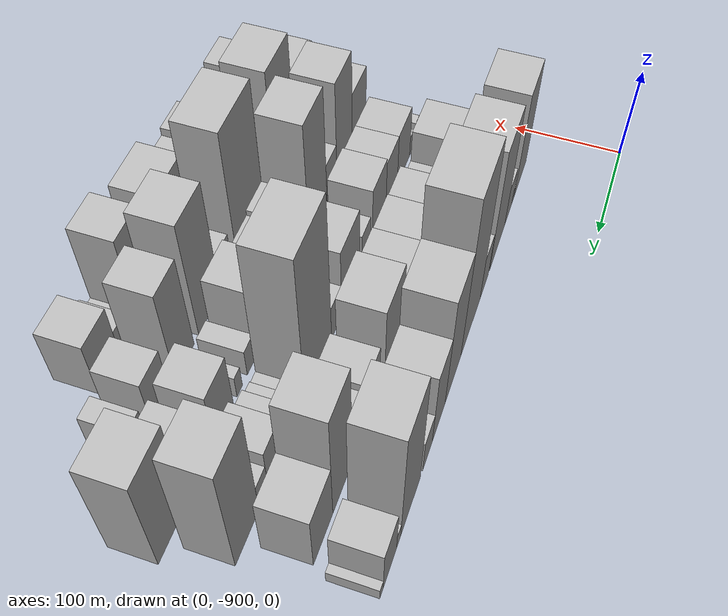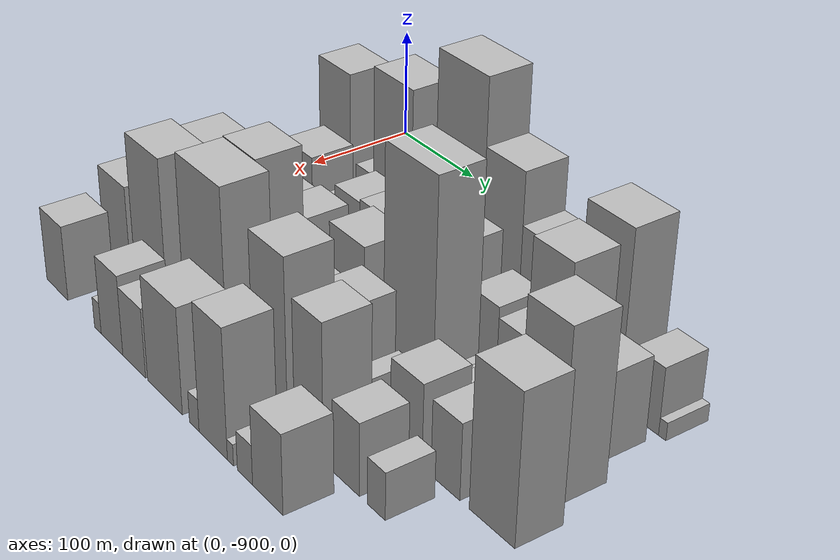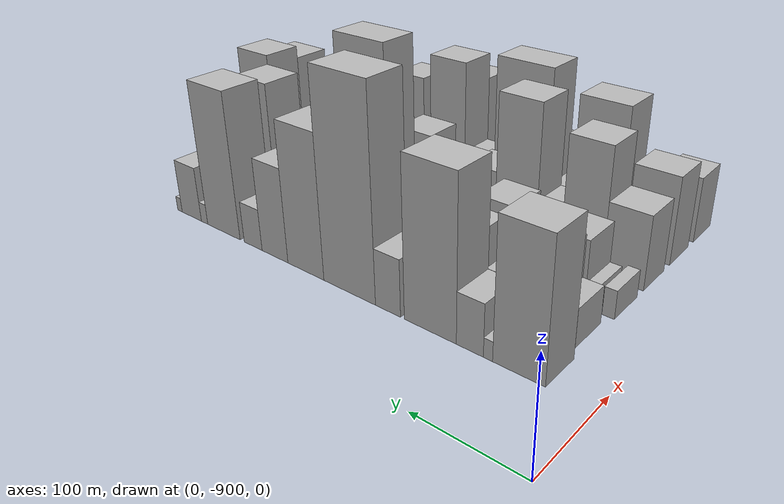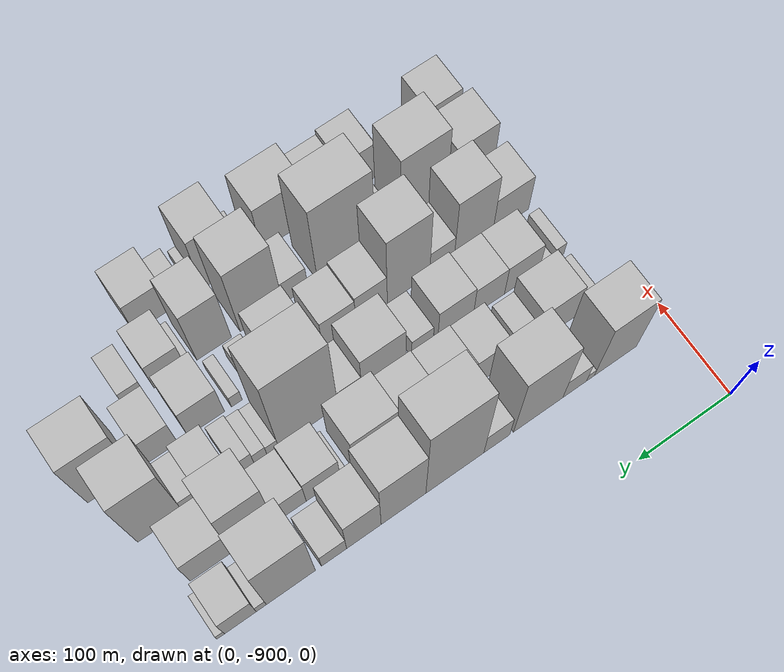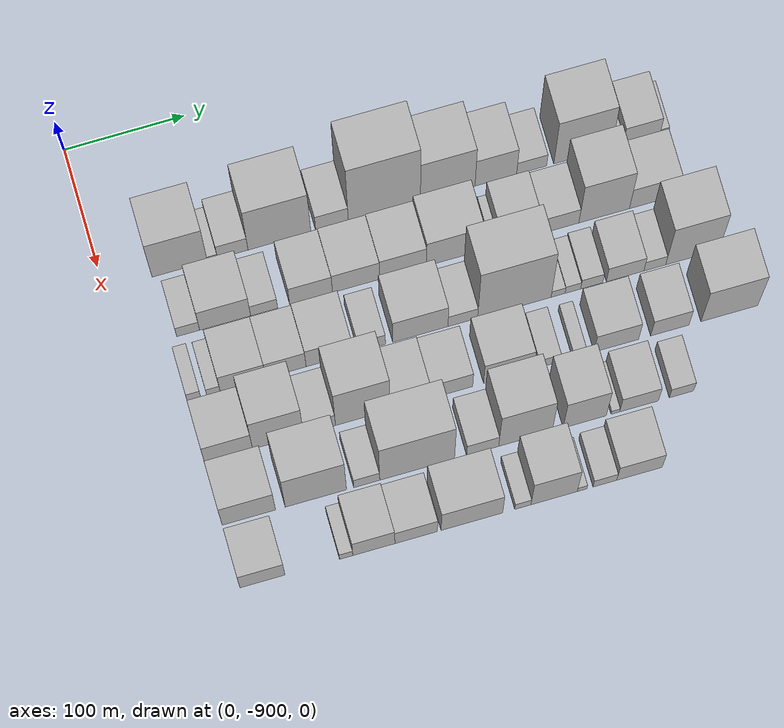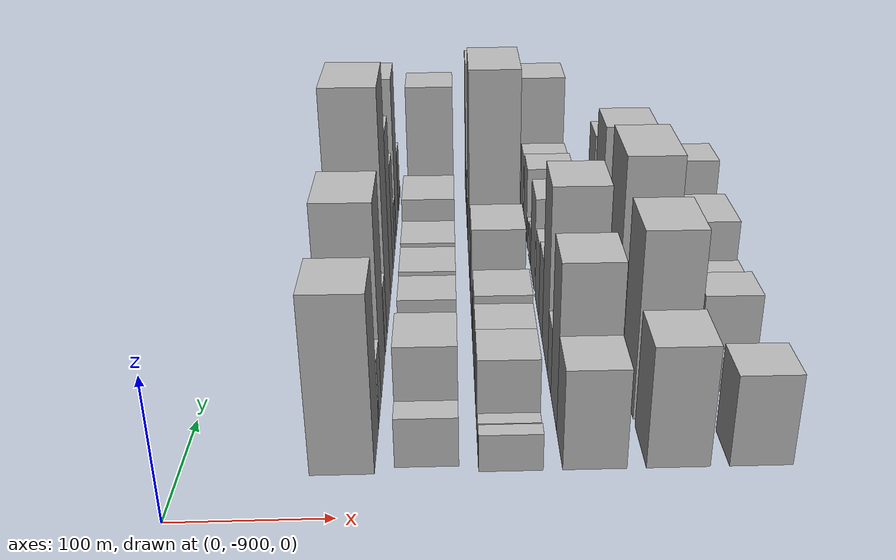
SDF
<sdf version="1.6">
 <world name="default">
  <model name="building_1">
   <static>1</static>
   <pose>100.0000 -837.0420 0 0.000000 0.000000 0.000000</pose>
   <link name="link">
    <pose>0 0 63.00 0 0 0</pose>
    <collision name="collision"><geometry><box><size>40.0000 45.9160 126.0000</size></box></geometry></collision>
    <visual name="visual">
     <cast_shadows>0</cast_shadows>
     <geometry><box><size>40.0000 45.9160 126.0000</size></box></geometry>
     <material>
      <script>
       <uri>model://HANNAS_wall/materials/scripts</uri>
       <uri>model://HANNAS_wall/materials/textures</uri>
       <name>vrc/HANNAS_wall</name>
      </script>
     </material>
    </visual>
   </link>
  </model>
  <model name="building_2">
   <static>1</static>
   <pose>100.0000 -809.8941 0 0.000000 0.000000 0.000000</pose>
   <link name="link">
    <pose>0 0 9.00 0 0 0</pose>
    <collision name="collision"><geometry><box><size>40.0000 8.3797 18.0000</size></box></geometry></collision>
    <visual name="visual">
     <cast_shadows>0</cast_shadows>
     <geometry><box><size>40.0000 8.3797 18.0000</size></box></geometry>
     <material>
      <script>
       <uri>model://HANNAS_wall/materials/scripts</uri>
       <uri>model://HANNAS_wall/materials/textures</uri>
       <name>vrc/HANNAS_wall</name>
      </script>
     </material>
    </visual>
   </link>
  </model>
  <model name="building_3">
   <static>1</static>
   <pose>100.0000 -792.9933 0 0.000000 0.000000 0.000000</pose>
   <link name="link">
    <pose>0 0 24.00 0 0 0</pose>
    <collision name="collision"><geometry><box><size>40.0000 25.4219 48.0000</size></box></geometry></collision>
    <visual name="visual">
     <cast_shadows>0</cast_shadows>
     <geometry><box><size>40.0000 25.4219 48.0000</size></box></geometry>
     <material>
      <script>
       <uri>model://HANNAS_wall/materials/scripts</uri>
       <uri>model://HANNAS_wall/materials/textures</uri>
       <name>vrc/HANNAS_wall</name>
      </script>
     </material>
    </visual>
   </link>
  </model>
  <model name="building_4">
   <static>1</static>
   <pose>100.0000 -754.1170 0 0.000000 0.000000 0.000000</pose>
   <link name="link">
    <pose>0 0 73.50 0 0 0</pose>
    <collision name="collision"><geometry><box><size>40.0000 52.3308 147.0000</size></box></geometry></collision>
    <visual name="visual">
     <cast_shadows>0</cast_shadows>
     <geometry><box><size>40.0000 52.3308 147.0000</size></box></geometry>
     <material>
      <script>
       <uri>model://HANNAS_wall/materials/scripts</uri>
       <uri>model://HANNAS_wall/materials/textures</uri>
       <name>vrc/HANNAS_wall</name>
      </script>
     </material>
    </visual>
   </link>
  </model>
  <model name="building_5">
   <static>1</static>
   <pose>100.0000 -710.3732 0 0.000000 0.000000 0.000000</pose>
   <link name="link">
    <pose>0 0 27.00 0 0 0</pose>
    <collision name="collision"><geometry><box><size>40.0000 27.1567 54.0000</size></box></geometry></collision>
    <visual name="visual">
     <cast_shadows>0</cast_shadows>
     <geometry><box><size>40.0000 27.1567 54.0000</size></box></geometry>
     <material>
      <script>
       <uri>model://HANNAS_wall/materials/scripts</uri>
       <uri>model://HANNAS_wall/materials/textures</uri>
       <name>vrc/HANNAS_wall</name>
      </script>
     </material>
    </visual>
   </link>
  </model>
  <model name="building_6">
   <static>1</static>
   <pose>100.0000 -666.7493 0 0.000000 0.000000 0.000000</pose>
   <link name="link">
    <pose>0 0 97.50 0 0 0</pose>
    <collision name="collision"><geometry><box><size>40.0000 60.0911 195.0000</size></box></geometry></collision>
    <visual name="visual">
     <cast_shadows>0</cast_shadows>
     <geometry><box><size>40.0000 60.0911 195.0000</size></box></geometry>
     <material>
      <script>
       <uri>model://HANNAS_wall/materials/scripts</uri>
       <uri>model://HANNAS_wall/materials/textures</uri>
       <name>vrc/HANNAS_wall</name>
      </script>
     </material>
    </visual>
   </link>
  </model>
  <model name="building_7">
   <static>1</static>
   <pose>100.0000 -613.9313 0 0.000000 0.000000 0.000000</pose>
   <link name="link">
    <pose>0 0 69.00 0 0 0</pose>
    <collision name="collision"><geometry><box><size>40.0000 45.5448 138.0000</size></box></geometry></collision>
    <visual name="visual">
     <cast_shadows>0</cast_shadows>
     <geometry><box><size>40.0000 45.5448 138.0000</size></box></geometry>
     <material>
      <script>
       <uri>model://HANNAS_wall/materials/scripts</uri>
       <uri>model://HANNAS_wall/materials/textures</uri>
       <name>vrc/HANNAS_wall</name>
      </script>
     </material>
    </visual>
   </link>
  </model>
  <model name="building_8">
   <static>1</static>
   <pose>100.0000 -573.7703 0 0.000000 0.000000 0.000000</pose>
   <link name="link">
    <pose>0 0 46.50 0 0 0</pose>
    <collision name="collision"><geometry><box><size>40.0000 34.7772 93.0000</size></box></geometry></collision>
    <visual name="visual">
     <cast_shadows>0</cast_shadows>
     <geometry><box><size>40.0000 34.7772 93.0000</size></box></geometry>
     <material>
      <script>
       <uri>model://HANNAS_wall/materials/scripts</uri>
       <uri>model://HANNAS_wall/materials/textures</uri>
       <name>vrc/HANNAS_wall</name>
      </script>
     </material>
    </visual>
   </link>
  </model>
  <model name="building_9">
   <static>1</static>
   <pose>100.0000 -543.8166 0 0.000000 0.000000 0.000000</pose>
   <link name="link">
    <pose>0 0 21.00 0 0 0</pose>
    <collision name="collision"><geometry><box><size>40.0000 25.1302 42.0000</size></box></geometry></collision>
    <visual name="visual">
     <cast_shadows>0</cast_shadows>
     <geometry><box><size>40.0000 25.1302 42.0000</size></box></geometry>
     <material>
      <script>
       <uri>model://HANNAS_wall/materials/scripts</uri>
       <uri>model://HANNAS_wall/materials/textures</uri>
       <name>vrc/HANNAS_wall</name>
      </script>
     </material>
    </visual>
   </link>
  </model>
  <model name="building_10">
   <static>1</static>
   <pose>100.0000 -501.0413 0 0.000000 0.000000 0.000000</pose>
   <link name="link">
    <pose>0 0 73.50 0 0 0</pose>
    <collision name="collision"><geometry><box><size>40.0000 48.4204 147.0000</size></box></geometry></collision>
    <visual name="visual">
     <cast_shadows>0</cast_shadows>
     <geometry><box><size>40.0000 48.4204 147.0000</size></box></geometry>
     <material>
      <script>
       <uri>model://HANNAS_wall/materials/scripts</uri>
       <uri>model://HANNAS_wall/materials/textures</uri>
       <name>vrc/HANNAS_wall</name>
      </script>
     </material>
    </visual>
   </link>
  </model>
  <model name="building_11">
   <static>1</static>
   <pose>100.0000 -471.9113 0 0.000000 0.000000 0.000000</pose>
   <link name="link">
    <pose>0 0 10.50 0 0 0</pose>
    <collision name="collision"><geometry><box><size>40.0000 9.8395 21.0000</size></box></geometry></collision>
    <visual name="visual">
     <cast_shadows>0</cast_shadows>
     <geometry><box><size>40.0000 9.8395 21.0000</size></box></geometry>
     <material>
      <script>
       <uri>model://HANNAS_wall/materials/scripts</uri>
       <uri>model://HANNAS_wall/materials/textures</uri>
       <name>vrc/HANNAS_wall</name>
      </script>
     </material>
    </visual>
   </link>
  </model>
  <model name="building_12">
   <static>1</static>
   <pose>100.0000 -451.5993 0 0.000000 0.000000 0.000000</pose>
   <link name="link">
    <pose>0 0 28.50 0 0 0</pose>
    <collision name="collision"><geometry><box><size>40.0000 30.7844 57.0000</size></box></geometry></collision>
    <visual name="visual">
     <cast_shadows>0</cast_shadows>
     <geometry><box><size>40.0000 30.7844 57.0000</size></box></geometry>
     <material>
      <script>
       <uri>model://HANNAS_wall/materials/scripts</uri>
       <uri>model://HANNAS_wall/materials/textures</uri>
       <name>vrc/HANNAS_wall</name>
      </script>
     </material>
    </visual>
   </link>
  </model>
  <model name="building_13">
   <static>1</static>
   <pose>100.0000 -432.5059 0 0.000000 0.000000 0.000000</pose>
   <link name="link">
    <pose>0 0 7.50 0 0 0</pose>
    <collision name="collision"><geometry><box><size>40.0000 7.4024 15.0000</size></box></geometry></collision>
    <visual name="visual">
     <cast_shadows>0</cast_shadows>
     <geometry><box><size>40.0000 7.4024 15.0000</size></box></geometry>
     <material>
      <script>
       <uri>model://HANNAS_wall/materials/scripts</uri>
       <uri>model://HANNAS_wall/materials/textures</uri>
       <name>vrc/HANNAS_wall</name>
      </script>
     </material>
    </visual>
   </link>
  </model>
  <model name="building_47">
   <static>1</static>
   <pose>152.0000 -844.4852 0 0.000000 0.000000 0.000000</pose>
   <link name="link">
    <pose>0 0 18.00 0 0 0</pose>
    <collision name="collision"><geometry><box><size>40.0000 19.0295 36.0000</size></box></geometry></collision>
    <visual name="visual">
     <cast_shadows>0</cast_shadows>
     <geometry><box><size>40.0000 19.0295 36.0000</size></box></geometry>
     <material>
      <script>
       <uri>model://HANNAS_wall/materials/scripts</uri>
       <uri>model://HANNAS_wall/materials/textures</uri>
       <name>vrc/HANNAS_wall</name>
      </script>
     </material>
    </visual>
   </link>
  </model>
  <model name="building_48">
   <static>1</static>
   <pose>152.0000 -813.8768 0 0.000000 0.000000 0.000000</pose>
   <link name="link">
    <pose>0 0 37.50 0 0 0</pose>
    <collision name="collision"><geometry><box><size>40.0000 42.1874 75.0000</size></box></geometry></collision>
    <visual name="visual">
     <cast_shadows>0</cast_shadows>
     <geometry><box><size>40.0000 42.1874 75.0000</size></box></geometry>
     <material>
      <script>
       <uri>model://HANNAS_wall/materials/scripts</uri>
       <uri>model://HANNAS_wall/materials/textures</uri>
       <name>vrc/HANNAS_wall</name>
      </script>
     </material>
    </visual>
   </link>
  </model>
  <model name="building_49">
   <static>1</static>
   <pose>152.0000 -781.5532 0 0.000000 0.000000 0.000000</pose>
   <link name="link">
    <pose>0 0 19.50 0 0 0</pose>
    <collision name="collision"><geometry><box><size>40.0000 22.4599 39.0000</size></box></geometry></collision>
    <visual name="visual">
     <cast_shadows>0</cast_shadows>
     <geometry><box><size>40.0000 22.4599 39.0000</size></box></geometry>
     <material>
      <script>
       <uri>model://HANNAS_wall/materials/scripts</uri>
       <uri>model://HANNAS_wall/materials/textures</uri>
       <name>vrc/HANNAS_wall</name>
      </script>
     </material>
    </visual>
   </link>
  </model>
  <model name="building_50">
   <static>1</static>
   <pose>152.0000 -742.5627 0 0.000000 0.000000 0.000000</pose>
   <link name="link">
    <pose>0 0 33.00 0 0 0</pose>
    <collision name="collision"><geometry><box><size>40.0000 35.5212 66.0000</size></box></geometry></collision>
    <visual name="visual">
     <cast_shadows>0</cast_shadows>
     <geometry><box><size>40.0000 35.5212 66.0000</size></box></geometry>
     <material>
      <script>
       <uri>model://HANNAS_wall/materials/scripts</uri>
       <uri>model://HANNAS_wall/materials/textures</uri>
       <name>vrc/HANNAS_wall</name>
      </script>
     </material>
    </visual>
   </link>
  </model>
  <model name="building_51">
   <static>1</static>
   <pose>152.0000 -705.1390 0 0.000000 0.000000 0.000000</pose>
   <link name="link">
    <pose>0 0 34.50 0 0 0</pose>
    <collision name="collision"><geometry><box><size>40.0000 39.3261 69.0000</size></box></geometry></collision>
    <visual name="visual">
     <cast_shadows>0</cast_shadows>
     <geometry><box><size>40.0000 39.3261 69.0000</size></box></geometry>
     <material>
      <script>
       <uri>model://HANNAS_wall/materials/scripts</uri>
       <uri>model://HANNAS_wall/materials/textures</uri>
       <name>vrc/HANNAS_wall</name>
      </script>
     </material>
    </visual>
   </link>
  </model>
  <model name="building_52">
   <static>1</static>
   <pose>152.0000 -666.0387 0 0.000000 0.000000 0.000000</pose>
   <link name="link">
    <pose>0 0 36.00 0 0 0</pose>
    <collision name="collision"><geometry><box><size>40.0000 38.8745 72.0000</size></box></geometry></collision>
    <visual name="visual">
     <cast_shadows>0</cast_shadows>
     <geometry><box><size>40.0000 38.8745 72.0000</size></box></geometry>
     <material>
      <script>
       <uri>model://HANNAS_wall/materials/scripts</uri>
       <uri>model://HANNAS_wall/materials/textures</uri>
       <name>vrc/HANNAS_wall</name>
      </script>
     </material>
    </visual>
   </link>
  </model>
  <model name="building_53">
   <static>1</static>
   <pose>152.0000 -622.7823 0 0.000000 0.000000 0.000000</pose>
   <link name="link">
    <pose>0 0 45.00 0 0 0</pose>
    <collision name="collision"><geometry><box><size>40.0000 47.6382 90.0000</size></box></geometry></collision>
    <visual name="visual">
     <cast_shadows>0</cast_shadows>
     <geometry><box><size>40.0000 47.6382 90.0000</size></box></geometry>
     <material>
      <script>
       <uri>model://HANNAS_wall/materials/scripts</uri>
       <uri>model://HANNAS_wall/materials/textures</uri>
       <name>vrc/HANNAS_wall</name>
      </script>
     </material>
    </visual>
   </link>
  </model>
  <model name="building_54">
   <static>1</static>
   <pose>152.0000 -589.4451 0 0.000000 0.000000 0.000000</pose>
   <link name="link">
    <pose>0 0 7.50 0 0 0</pose>
    <collision name="collision"><geometry><box><size>40.0000 7.0364 15.0000</size></box></geometry></collision>
    <visual name="visual">
     <cast_shadows>0</cast_shadows>
     <geometry><box><size>40.0000 7.0364 15.0000</size></box></geometry>
     <material>
      <script>
       <uri>model://HANNAS_wall/materials/scripts</uri>
       <uri>model://HANNAS_wall/materials/textures</uri>
       <name>vrc/HANNAS_wall</name>
      </script>
     </material>
    </visual>
   </link>
  </model>
  <model name="building_55">
   <static>1</static>
   <pose>152.0000 -568.5939 0 0.000000 0.000000 0.000000</pose>
   <link name="link">
    <pose>0 0 31.50 0 0 0</pose>
    <collision name="collision"><geometry><box><size>40.0000 34.6660 63.0000</size></box></geometry></collision>
    <visual name="visual">
     <cast_shadows>0</cast_shadows>
     <geometry><box><size>40.0000 34.6660 63.0000</size></box></geometry>
     <material>
      <script>
       <uri>model://HANNAS_wall/materials/scripts</uri>
       <uri>model://HANNAS_wall/materials/textures</uri>
       <name>vrc/HANNAS_wall</name>
      </script>
     </material>
    </visual>
   </link>
  </model>
  <model name="building_56">
   <static>1</static>
   <pose>152.0000 -535.4307 0 0.000000 0.000000 0.000000</pose>
   <link name="link">
    <pose>0 0 27.00 0 0 0</pose>
    <collision name="collision"><geometry><box><size>40.0000 31.6604 54.0000</size></box></geometry></collision>
    <visual name="visual">
     <cast_shadows>0</cast_shadows>
     <geometry><box><size>40.0000 31.6604 54.0000</size></box></geometry>
     <material>
      <script>
       <uri>model://HANNAS_wall/materials/scripts</uri>
       <uri>model://HANNAS_wall/materials/textures</uri>
       <name>vrc/HANNAS_wall</name>
      </script>
     </material>
    </visual>
   </link>
  </model>
  <model name="building_57">
   <static>1</static>
   <pose>152.0000 -498.4532 0 0.000000 0.000000 0.000000</pose>
   <link name="link">
    <pose>0 0 69.00 0 0 0</pose>
    <collision name="collision"><geometry><box><size>40.0000 42.2945 138.0000</size></box></geometry></collision>
    <visual name="visual">
     <cast_shadows>0</cast_shadows>
     <geometry><box><size>40.0000 42.2945 138.0000</size></box></geometry>
     <material>
      <script>
       <uri>model://HANNAS_wall/materials/scripts</uri>
       <uri>model://HANNAS_wall/materials/textures</uri>
       <name>vrc/HANNAS_wall</name>
      </script>
     </material>
    </visual>
   </link>
  </model>
  <model name="building_58">
   <static>1</static>
   <pose>152.0000 -456.8312 0 0.000000 0.000000 0.000000</pose>
   <link name="link">
    <pose>0 0 36.00 0 0 0</pose>
    <collision name="collision"><geometry><box><size>40.0000 40.9496 72.0000</size></box></geometry></collision>
    <visual name="visual">
     <cast_shadows>0</cast_shadows>
     <geometry><box><size>40.0000 40.9496 72.0000</size></box></geometry>
     <material>
      <script>
       <uri>model://HANNAS_wall/materials/scripts</uri>
       <uri>model://HANNAS_wall/materials/textures</uri>
       <name>vrc/HANNAS_wall</name>
      </script>
     </material>
    </visual>
   </link>
  </model>
  <model name="building_95">
   <static>1</static>
   <pose>204.0000 -854.3983 0 0.000000 0.000000 0.000000</pose>
   <link name="link">
    <pose>0 0 13.50 0 0 0</pose>
    <collision name="collision"><geometry><box><size>40.0000 11.2034 27.0000</size></box></geometry></collision>
    <visual name="visual">
     <cast_shadows>0</cast_shadows>
     <geometry><box><size>40.0000 11.2034 27.0000</size></box></geometry>
     <material>
      <script>
       <uri>model://HANNAS_wall/materials/scripts</uri>
       <uri>model://HANNAS_wall/materials/textures</uri>
       <name>vrc/HANNAS_wall</name>
      </script>
     </material>
    </visual>
   </link>
  </model>
  <model name="building_96">
   <static>1</static>
   <pose>204.0000 -838.2324 0 0.000000 0.000000 0.000000</pose>
   <link name="link">
    <pose>0 0 12.00 0 0 0</pose>
    <collision name="collision"><geometry><box><size>40.0000 11.1285 24.0000</size></box></geometry></collision>
    <visual name="visual">
     <cast_shadows>0</cast_shadows>
     <geometry><box><size>40.0000 11.1285 24.0000</size></box></geometry>
     <material>
      <script>
       <uri>model://HANNAS_wall/materials/scripts</uri>
       <uri>model://HANNAS_wall/materials/textures</uri>
       <name>vrc/HANNAS_wall</name>
      </script>
     </material>
    </visual>
   </link>
  </model>
  <model name="building_97">
   <static>1</static>
   <pose>204.0000 -813.8467 0 0.000000 0.000000 0.000000</pose>
   <link name="link">
    <pose>0 0 31.50 0 0 0</pose>
    <collision name="collision"><geometry><box><size>40.0000 37.6428 63.0000</size></box></geometry></collision>
    <visual name="visual">
     <cast_shadows>0</cast_shadows>
     <geometry><box><size>40.0000 37.6428 63.0000</size></box></geometry>
     <material>
      <script>
       <uri>model://HANNAS_wall/materials/scripts</uri>
       <uri>model://HANNAS_wall/materials/textures</uri>
       <name>vrc/HANNAS_wall</name>
      </script>
     </material>
    </visual>
   </link>
  </model>
  <model name="building_98">
   <static>1</static>
   <pose>204.0000 -778.2249 0 0.000000 0.000000 0.000000</pose>
   <link name="link">
    <pose>0 0 31.50 0 0 0</pose>
    <collision name="collision"><geometry><box><size>40.0000 33.6008 63.0000</size></box></geometry></collision>
    <visual name="visual">
     <cast_shadows>0</cast_shadows>
     <geometry><box><size>40.0000 33.6008 63.0000</size></box></geometry>
     <material>
      <script>
       <uri>model://HANNAS_wall/materials/scripts</uri>
       <uri>model://HANNAS_wall/materials/textures</uri>
       <name>vrc/HANNAS_wall</name>
      </script>
     </material>
    </visual>
   </link>
  </model>
  <model name="building_99">
   <static>1</static>
   <pose>204.0000 -742.4199 0 0.000000 0.000000 0.000000</pose>
   <link name="link">
    <pose>0 0 34.50 0 0 0</pose>
    <collision name="collision"><geometry><box><size>40.0000 38.0093 69.0000</size></box></geometry></collision>
    <visual name="visual">
     <cast_shadows>0</cast_shadows>
     <geometry><box><size>40.0000 38.0093 69.0000</size></box></geometry>
     <material>
      <script>
       <uri>model://HANNAS_wall/materials/scripts</uri>
       <uri>model://HANNAS_wall/materials/textures</uri>
       <name>vrc/HANNAS_wall</name>
      </script>
     </material>
    </visual>
   </link>
  </model>
  <model name="building_100">
   <static>1</static>
   <pose>204.0000 -707.0562 0 0.000000 0.000000 0.000000</pose>
   <link name="link">
    <pose>0 0 21.00 0 0 0</pose>
    <collision name="collision"><geometry><box><size>40.0000 22.7180 42.0000</size></box></geometry></collision>
    <visual name="visual">
     <cast_shadows>0</cast_shadows>
     <geometry><box><size>40.0000 22.7180 42.0000</size></box></geometry>
     <material>
      <script>
       <uri>model://HANNAS_wall/materials/scripts</uri>
       <uri>model://HANNAS_wall/materials/textures</uri>
       <name>vrc/HANNAS_wall</name>
      </script>
     </material>
    </visual>
   </link>
  </model>
  <model name="building_101">
   <static>1</static>
   <pose>204.0000 -666.7485 0 0.000000 0.000000 0.000000</pose>
   <link name="link">
    <pose>0 0 42.00 0 0 0</pose>
    <collision name="collision"><geometry><box><size>40.0000 45.8974 84.0000</size></box></geometry></collision>
    <visual name="visual">
     <cast_shadows>0</cast_shadows>
     <geometry><box><size>40.0000 45.8974 84.0000</size></box></geometry>
     <material>
      <script>
       <uri>model://HANNAS_wall/materials/scripts</uri>
       <uri>model://HANNAS_wall/materials/textures</uri>
       <name>vrc/HANNAS_wall</name>
      </script>
     </material>
    </visual>
   </link>
  </model>
  <model name="building_102">
   <static>1</static>
   <pose>204.0000 -631.4770 0 0.000000 0.000000 0.000000</pose>
   <link name="link">
    <pose>0 0 21.00 0 0 0</pose>
    <collision name="collision"><geometry><box><size>40.0000 24.6456 42.0000</size></box></geometry></collision>
    <visual name="visual">
     <cast_shadows>0</cast_shadows>
     <geometry><box><size>40.0000 24.6456 42.0000</size></box></geometry>
     <material>
      <script>
       <uri>model://HANNAS_wall/materials/scripts</uri>
       <uri>model://HANNAS_wall/materials/textures</uri>
       <name>vrc/HANNAS_wall</name>
      </script>
     </material>
    </visual>
   </link>
  </model>
  <model name="building_103">
   <static>1</static>
   <pose>204.0000 -588.5815 0 0.000000 0.000000 0.000000</pose>
   <link name="link">
    <pose>0 0 91.50 0 0 0</pose>
    <collision name="collision"><geometry><box><size>40.0000 61.1455 183.0000</size></box></geometry></collision>
    <visual name="visual">
     <cast_shadows>0</cast_shadows>
     <geometry><box><size>40.0000 61.1455 183.0000</size></box></geometry>
     <material>
      <script>
       <uri>model://HANNAS_wall/materials/scripts</uri>
       <uri>model://HANNAS_wall/materials/textures</uri>
       <name>vrc/HANNAS_wall</name>
      </script>
     </material>
    </visual>
   </link>
  </model>
  <model name="building_104">
   <static>1</static>
   <pose>204.0000 -552.2129 0 0.000000 0.000000 0.000000</pose>
   <link name="link">
    <pose>0 0 12.00 0 0 0</pose>
    <collision name="collision"><geometry><box><size>40.0000 11.5918 24.0000</size></box></geometry></collision>
    <visual name="visual">
     <cast_shadows>0</cast_shadows>
     <geometry><box><size>40.0000 11.5918 24.0000</size></box></geometry>
     <material>
      <script>
       <uri>model://HANNAS_wall/materials/scripts</uri>
       <uri>model://HANNAS_wall/materials/textures</uri>
       <name>vrc/HANNAS_wall</name>
      </script>
     </material>
    </visual>
   </link>
  </model>
  <model name="building_105">
   <static>1</static>
   <pose>204.0000 -539.9269 0 0.000000 0.000000 0.000000</pose>
   <link name="link">
    <pose>0 0 13.50 0 0 0</pose>
    <collision name="collision"><geometry><box><size>40.0000 12.9801 27.0000</size></box></geometry></collision>
    <visual name="visual">
     <cast_shadows>0</cast_shadows>
     <geometry><box><size>40.0000 12.9801 27.0000</size></box></geometry>
     <material>
      <script>
       <uri>model://HANNAS_wall/materials/scripts</uri>
       <uri>model://HANNAS_wall/materials/textures</uri>
       <name>vrc/HANNAS_wall</name>
      </script>
     </material>
    </visual>
   </link>
  </model>
  <model name="building_106">
   <static>1</static>
   <pose>204.0000 -524.2173 0 0.000000 0.000000 0.000000</pose>
   <link name="link">
    <pose>0 0 18.00 0 0 0</pose>
    <collision name="collision"><geometry><box><size>40.0000 18.4392 36.0000</size></box></geometry></collision>
    <visual name="visual">
     <cast_shadows>0</cast_shadows>
     <geometry><box><size>40.0000 18.4392 36.0000</size></box></geometry>
     <material>
      <script>
       <uri>model://HANNAS_wall/materials/scripts</uri>
       <uri>model://HANNAS_wall/materials/textures</uri>
       <name>vrc/HANNAS_wall</name>
      </script>
     </material>
    </visual>
   </link>
  </model>
  <model name="building_107">
   <static>1</static>
   <pose>204.0000 -496.3665 0 0.000000 0.000000 0.000000</pose>
   <link name="link">
    <pose>0 0 27.00 0 0 0</pose>
    <collision name="collision"><geometry><box><size>40.0000 31.2622 54.0000</size></box></geometry></collision>
    <visual name="visual">
     <cast_shadows>0</cast_shadows>
     <geometry><box><size>40.0000 31.2622 54.0000</size></box></geometry>
     <material>
      <script>
       <uri>model://HANNAS_wall/materials/scripts</uri>
       <uri>model://HANNAS_wall/materials/textures</uri>
       <name>vrc/HANNAS_wall</name>
      </script>
     </material>
    </visual>
   </link>
  </model>
  <model name="building_108">
   <static>1</static>
   <pose>204.0000 -471.6468 0 0.000000 0.000000 0.000000</pose>
   <link name="link">
    <pose>0 0 18.00 0 0 0</pose>
    <collision name="collision"><geometry><box><size>40.0000 18.1772 36.0000</size></box></geometry></collision>
    <visual name="visual">
     <cast_shadows>0</cast_shadows>
     <geometry><box><size>40.0000 18.1772 36.0000</size></box></geometry>
     <material>
      <script>
       <uri>model://HANNAS_wall/materials/scripts</uri>
       <uri>model://HANNAS_wall/materials/textures</uri>
       <name>vrc/HANNAS_wall</name>
      </script>
     </material>
    </visual>
   </link>
  </model>
  <model name="building_109">
   <static>1</static>
   <pose>204.0000 -440.2653 0 0.000000 0.000000 0.000000</pose>
   <link name="link">
    <pose>0 0 70.50 0 0 0</pose>
    <collision name="collision"><geometry><box><size>40.0000 44.5857 141.0000</size></box></geometry></collision>
    <visual name="visual">
     <cast_shadows>0</cast_shadows>
     <geometry><box><size>40.0000 44.5857 141.0000</size></box></geometry>
     <material>
      <script>
       <uri>model://HANNAS_wall/materials/scripts</uri>
       <uri>model://HANNAS_wall/materials/textures</uri>
       <name>vrc/HANNAS_wall</name>
      </script>
     </material>
    </visual>
   </link>
  </model>
  <model name="building_146">
   <static>1</static>
   <pose>256.0000 -840.2040 0 0.000000 0.000000 0.000000</pose>
   <link name="link">
    <pose>0 0 36.00 0 0 0</pose>
    <collision name="collision"><geometry><box><size>40.0000 39.5921 72.0000</size></box></geometry></collision>
    <visual name="visual">
     <cast_shadows>0</cast_shadows>
     <geometry><box><size>40.0000 39.5921 72.0000</size></box></geometry>
     <material>
      <script>
       <uri>model://HANNAS_wall/materials/scripts</uri>
       <uri>model://HANNAS_wall/materials/textures</uri>
       <name>vrc/HANNAS_wall</name>
      </script>
     </material>
    </visual>
   </link>
  </model>
  <model name="building_147">
   <static>1</static>
   <pose>256.0000 -799.3919 0 0.000000 0.000000 0.000000</pose>
   <link name="link">
    <pose>0 0 61.50 0 0 0</pose>
    <collision name="collision"><geometry><box><size>40.0000 42.0320 123.0000</size></box></geometry></collision>
    <visual name="visual">
     <cast_shadows>0</cast_shadows>
     <geometry><box><size>40.0000 42.0320 123.0000</size></box></geometry>
     <material>
      <script>
       <uri>model://HANNAS_wall/materials/scripts</uri>
       <uri>model://HANNAS_wall/materials/textures</uri>
       <name>vrc/HANNAS_wall</name>
      </script>
     </material>
    </visual>
   </link>
  </model>
  <model name="building_148">
   <static>1</static>
   <pose>256.0000 -765.1490 0 0.000000 0.000000 0.000000</pose>
   <link name="link">
    <pose>0 0 25.50 0 0 0</pose>
    <collision name="collision"><geometry><box><size>40.0000 26.4537 51.0000</size></box></geometry></collision>
    <visual name="visual">
     <cast_shadows>0</cast_shadows>
     <geometry><box><size>40.0000 26.4537 51.0000</size></box></geometry>
     <material>
      <script>
       <uri>model://HANNAS_wall/materials/scripts</uri>
       <uri>model://HANNAS_wall/materials/textures</uri>
       <name>vrc/HANNAS_wall</name>
      </script>
     </material>
    </visual>
   </link>
  </model>
  <model name="building_149">
   <static>1</static>
   <pose>256.0000 -729.3121 0 0.000000 0.000000 0.000000</pose>
   <link name="link">
    <pose>0 0 72.00 0 0 0</pose>
    <collision name="collision"><geometry><box><size>40.0000 45.2202 144.0000</size></box></geometry></collision>
    <visual name="visual">
     <cast_shadows>0</cast_shadows>
     <geometry><box><size>40.0000 45.2202 144.0000</size></box></geometry>
     <material>
      <script>
       <uri>model://HANNAS_wall/materials/scripts</uri>
       <uri>model://HANNAS_wall/materials/textures</uri>
       <name>vrc/HANNAS_wall</name>
      </script>
     </material>
    </visual>
   </link>
  </model>
  <model name="building_150">
   <static>1</static>
   <pose>256.0000 -690.1860 0 0.000000 0.000000 0.000000</pose>
   <link name="link">
    <pose>0 0 33.00 0 0 0</pose>
    <collision name="collision"><geometry><box><size>40.0000 33.0320 66.0000</size></box></geometry></collision>
    <visual name="visual">
     <cast_shadows>0</cast_shadows>
     <geometry><box><size>40.0000 33.0320 66.0000</size></box></geometry>
     <material>
      <script>
       <uri>model://HANNAS_wall/materials/scripts</uri>
       <uri>model://HANNAS_wall/materials/textures</uri>
       <name>vrc/HANNAS_wall</name>
      </script>
     </material>
    </visual>
   </link>
  </model>
  <model name="building_151">
   <static>1</static>
   <pose>256.0000 -656.0137 0 0.000000 0.000000 0.000000</pose>
   <link name="link">
    <pose>0 0 30.00 0 0 0</pose>
    <collision name="collision"><geometry><box><size>40.0000 35.3126 60.0000</size></box></geometry></collision>
    <visual name="visual">
     <cast_shadows>0</cast_shadows>
     <geometry><box><size>40.0000 35.3126 60.0000</size></box></geometry>
     <material>
      <script>
       <uri>model://HANNAS_wall/materials/scripts</uri>
       <uri>model://HANNAS_wall/materials/textures</uri>
       <name>vrc/HANNAS_wall</name>
      </script>
     </material>
    </visual>
   </link>
  </model>
  <model name="building_152">
   <static>1</static>
   <pose>256.0000 -608.5322 0 0.000000 0.000000 0.000000</pose>
   <link name="link">
    <pose>0 0 40.50 0 0 0</pose>
    <collision name="collision"><geometry><box><size>40.0000 41.6504 81.0000</size></box></geometry></collision>
    <visual name="visual">
     <cast_shadows>0</cast_shadows>
     <geometry><box><size>40.0000 41.6504 81.0000</size></box></geometry>
     <material>
      <script>
       <uri>model://HANNAS_wall/materials/scripts</uri>
       <uri>model://HANNAS_wall/materials/textures</uri>
       <name>vrc/HANNAS_wall</name>
      </script>
     </material>
    </visual>
   </link>
  </model>
  <model name="building_153">
   <static>1</static>
   <pose>256.0000 -574.6537 0 0.000000 0.000000 0.000000</pose>
   <link name="link">
    <pose>0 0 16.50 0 0 0</pose>
    <collision name="collision"><geometry><box><size>40.0000 18.1064 33.0000</size></box></geometry></collision>
    <visual name="visual">
     <cast_shadows>0</cast_shadows>
     <geometry><box><size>40.0000 18.1064 33.0000</size></box></geometry>
     <material>
      <script>
       <uri>model://HANNAS_wall/materials/scripts</uri>
       <uri>model://HANNAS_wall/materials/textures</uri>
       <name>vrc/HANNAS_wall</name>
      </script>
     </material>
    </visual>
   </link>
  </model>
  <model name="building_154">
   <static>1</static>
   <pose>256.0000 -550.0979 0 0.000000 0.000000 0.000000</pose>
   <link name="link">
    <pose>0 0 13.50 0 0 0</pose>
    <collision name="collision"><geometry><box><size>40.0000 11.0054 27.0000</size></box></geometry></collision>
    <visual name="visual">
     <cast_shadows>0</cast_shadows>
     <geometry><box><size>40.0000 11.0054 27.0000</size></box></geometry>
     <material>
      <script>
       <uri>model://HANNAS_wall/materials/scripts</uri>
       <uri>model://HANNAS_wall/materials/textures</uri>
       <name>vrc/HANNAS_wall</name>
      </script>
     </material>
    </visual>
   </link>
  </model>
  <model name="building_155">
   <static>1</static>
   <pose>256.0000 -519.0691 0 0.000000 0.000000 0.000000</pose>
   <link name="link">
    <pose>0 0 34.50 0 0 0</pose>
    <collision name="collision"><geometry><box><size>40.0000 37.0520 69.0000</size></box></geometry></collision>
    <visual name="visual">
     <cast_shadows>0</cast_shadows>
     <geometry><box><size>40.0000 37.0520 69.0000</size></box></geometry>
     <material>
      <script>
       <uri>model://HANNAS_wall/materials/scripts</uri>
       <uri>model://HANNAS_wall/materials/textures</uri>
       <name>vrc/HANNAS_wall</name>
      </script>
     </material>
    </visual>
   </link>
  </model>
  <model name="building_156">
   <static>1</static>
   <pose>256.0000 -474.6003 0 0.000000 0.000000 0.000000</pose>
   <link name="link">
    <pose>0 0 31.50 0 0 0</pose>
    <collision name="collision"><geometry><box><size>40.0000 31.8857 63.0000</size></box></geometry></collision>
    <visual name="visual">
     <cast_shadows>0</cast_shadows>
     <geometry><box><size>40.0000 31.8857 63.0000</size></box></geometry>
     <material>
      <script>
       <uri>model://HANNAS_wall/materials/scripts</uri>
       <uri>model://HANNAS_wall/materials/textures</uri>
       <name>vrc/HANNAS_wall</name>
      </script>
     </material>
    </visual>
   </link>
  </model>
  <model name="building_157">
   <static>1</static>
   <pose>256.0000 -424.9643 0 0.000000 0.000000 0.000000</pose>
   <link name="link">
    <pose>0 0 61.50 0 0 0</pose>
    <collision name="collision"><geometry><box><size>40.0000 47.3863 123.0000</size></box></geometry></collision>
    <visual name="visual">
     <cast_shadows>0</cast_shadows>
     <geometry><box><size>40.0000 47.3863 123.0000</size></box></geometry>
     <material>
      <script>
       <uri>model://HANNAS_wall/materials/scripts</uri>
       <uri>model://HANNAS_wall/materials/textures</uri>
       <name>vrc/HANNAS_wall</name>
      </script>
     </material>
    </visual>
   </link>
  </model>
  <model name="building_193">
   <static>1</static>
   <pose>308.0000 -838.0655 0 0.000000 0.000000 0.000000</pose>
   <link name="link">
    <pose>0 0 43.50 0 0 0</pose>
    <collision name="collision"><geometry><box><size>40.0000 43.8690 87.0000</size></box></geometry></collision>
    <visual name="visual">
     <cast_shadows>0</cast_shadows>
     <geometry><box><size>40.0000 43.8690 87.0000</size></box></geometry>
     <material>
      <script>
       <uri>model://HANNAS_wall/materials/scripts</uri>
       <uri>model://HANNAS_wall/materials/textures</uri>
       <name>vrc/HANNAS_wall</name>
      </script>
     </material>
    </visual>
   </link>
  </model>
  <model name="building_194">
   <static>1</static>
   <pose>308.0000 -782.8813 0 0.000000 0.000000 0.000000</pose>
   <link name="link">
    <pose>0 0 69.00 0 0 0</pose>
    <collision name="collision"><geometry><box><size>40.0000 50.4993 138.0000</size></box></geometry></collision>
    <visual name="visual">
     <cast_shadows>0</cast_shadows>
     <geometry><box><size>40.0000 50.4993 138.0000</size></box></geometry>
     <material>
      <script>
       <uri>model://HANNAS_wall/materials/scripts</uri>
       <uri>model://HANNAS_wall/materials/textures</uri>
       <name>vrc/HANNAS_wall</name>
      </script>
     </material>
    </visual>
   </link>
  </model>
  <model name="building_195">
   <static>1</static>
   <pose>308.0000 -740.9327 0 0.000000 0.000000 0.000000</pose>
   <link name="link">
    <pose>0 0 19.50 0 0 0</pose>
    <collision name="collision"><geometry><box><size>40.0000 21.3979 39.0000</size></box></geometry></collision>
    <visual name="visual">
     <cast_shadows>0</cast_shadows>
     <geometry><box><size>40.0000 21.3979 39.0000</size></box></geometry>
     <material>
      <script>
       <uri>model://HANNAS_wall/materials/scripts</uri>
       <uri>model://HANNAS_wall/materials/textures</uri>
       <name>vrc/HANNAS_wall</name>
      </script>
     </material>
    </visual>
   </link>
  </model>
  <model name="building_196">
   <static>1</static>
   <pose>308.0000 -699.3649 0 0.000000 0.000000 0.000000</pose>
   <link name="link">
    <pose>0 0 78.00 0 0 0</pose>
    <collision name="collision"><geometry><box><size>40.0000 61.7377 156.0000</size></box></geometry></collision>
    <visual name="visual">
     <cast_shadows>0</cast_shadows>
     <geometry><box><size>40.0000 61.7377 156.0000</size></box></geometry>
     <material>
      <script>
       <uri>model://HANNAS_wall/materials/scripts</uri>
       <uri>model://HANNAS_wall/materials/textures</uri>
       <name>vrc/HANNAS_wall</name>
      </script>
     </material>
    </visual>
   </link>
  </model>
  <model name="building_197">
   <static>1</static>
   <pose>308.0000 -645.2351 0 0.000000 0.000000 0.000000</pose>
   <link name="link">
    <pose>0 0 24.00 0 0 0</pose>
    <collision name="collision"><geometry><box><size>40.0000 26.5221 48.0000</size></box></geometry></collision>
    <visual name="visual">
     <cast_shadows>0</cast_shadows>
     <geometry><box><size>40.0000 26.5221 48.0000</size></box></geometry>
     <material>
      <script>
       <uri>model://HANNAS_wall/materials/scripts</uri>
       <uri>model://HANNAS_wall/materials/textures</uri>
       <name>vrc/HANNAS_wall</name>
      </script>
     </material>
    </visual>
   </link>
  </model>
  <model name="building_198">
   <static>1</static>
   <pose>308.0000 -609.7743 0 0.000000 0.000000 0.000000</pose>
   <link name="link">
    <pose>0 0 70.50 0 0 0</pose>
    <collision name="collision"><geometry><box><size>40.0000 44.3994 141.0000</size></box></geometry></collision>
    <visual name="visual">
     <cast_shadows>0</cast_shadows>
     <geometry><box><size>40.0000 44.3994 141.0000</size></box></geometry>
     <material>
      <script>
       <uri>model://HANNAS_wall/materials/scripts</uri>
       <uri>model://HANNAS_wall/materials/textures</uri>
       <name>vrc/HANNAS_wall</name>
      </script>
     </material>
    </visual>
   </link>
  </model>
  <model name="building_199">
   <static>1</static>
   <pose>308.0000 -560.7089 0 0.000000 0.000000 0.000000</pose>
   <link name="link">
    <pose>0 0 57.00 0 0 0</pose>
    <collision name="collision"><geometry><box><size>40.0000 35.7313 114.0000</size></box></geometry></collision>
    <visual name="visual">
     <cast_shadows>0</cast_shadows>
     <geometry><box><size>40.0000 35.7313 114.0000</size></box></geometry>
     <material>
      <script>
       <uri>model://HANNAS_wall/materials/scripts</uri>
       <uri>model://HANNAS_wall/materials/textures</uri>
       <name>vrc/HANNAS_wall</name>
      </script>
     </material>
    </visual>
   </link>
  </model>
  <model name="building_200">
   <static>1</static>
   <pose>308.0000 -535.2859 0 0.000000 0.000000 0.000000</pose>
   <link name="link">
    <pose>0 0 7.50 0 0 0</pose>
    <collision name="collision"><geometry><box><size>40.0000 7.1147 15.0000</size></box></geometry></collision>
    <visual name="visual">
     <cast_shadows>0</cast_shadows>
     <geometry><box><size>40.0000 7.1147 15.0000</size></box></geometry>
     <material>
      <script>
       <uri>model://HANNAS_wall/materials/scripts</uri>
       <uri>model://HANNAS_wall/materials/textures</uri>
       <name>vrc/HANNAS_wall</name>
      </script>
     </material>
    </visual>
   </link>
  </model>
  <model name="building_201">
   <static>1</static>
   <pose>308.0000 -515.6364 0 0.000000 0.000000 0.000000</pose>
   <link name="link">
    <pose>0 0 30.00 0 0 0</pose>
    <collision name="collision"><geometry><box><size>40.0000 32.1843 60.0000</size></box></geometry></collision>
    <visual name="visual">
     <cast_shadows>0</cast_shadows>
     <geometry><box><size>40.0000 32.1843 60.0000</size></box></geometry>
     <material>
      <script>
       <uri>model://HANNAS_wall/materials/scripts</uri>
       <uri>model://HANNAS_wall/materials/textures</uri>
       <name>vrc/HANNAS_wall</name>
      </script>
     </material>
    </visual>
   </link>
  </model>
  <model name="building_202">
   <static>1</static>
   <pose>308.0000 -480.3850 0 0.000000 0.000000 0.000000</pose>
   <link name="link">
    <pose>0 0 19.50 0 0 0</pose>
    <collision name="collision"><geometry><box><size>40.0000 20.3184 39.0000</size></box></geometry></collision>
    <visual name="visual">
     <cast_shadows>0</cast_shadows>
     <geometry><box><size>40.0000 20.3184 39.0000</size></box></geometry>
     <material>
      <script>
       <uri>model://HANNAS_wall/materials/scripts</uri>
       <uri>model://HANNAS_wall/materials/textures</uri>
       <name>vrc/HANNAS_wall</name>
      </script>
     </material>
    </visual>
   </link>
  </model>
  <model name="building_239">
   <static>1</static>
   <pose>360.0000 -841.5305 0 0.000000 0.000000 0.000000</pose>
   <link name="link">
    <pose>0 0 33.00 0 0 0</pose>
    <collision name="collision"><geometry><box><size>40.0000 36.9389 66.0000</size></box></geometry></collision>
    <visual name="visual">
     <cast_shadows>0</cast_shadows>
     <geometry><box><size>40.0000 36.9389 66.0000</size></box></geometry>
     <material>
      <script>
       <uri>model://HANNAS_wall/materials/scripts</uri>
       <uri>model://HANNAS_wall/materials/textures</uri>
       <name>vrc/HANNAS_wall</name>
      </script>
     </material>
    </visual>
   </link>
  </model>
  <model name="building_240">
   <static>1</static>
   <pose>360.0000 -772.7166 0 0.000000 0.000000 0.000000</pose>
   <link name="link">
    <pose>0 0 13.50 0 0 0</pose>
    <collision name="collision"><geometry><box><size>40.0000 10.8963 27.0000</size></box></geometry></collision>
    <visual name="visual">
     <cast_shadows>0</cast_shadows>
     <geometry><box><size>40.0000 10.8963 27.0000</size></box></geometry>
     <material>
      <script>
       <uri>model://HANNAS_wall/materials/scripts</uri>
       <uri>model://HANNAS_wall/materials/textures</uri>
       <name>vrc/HANNAS_wall</name>
      </script>
     </material>
    </visual>
   </link>
  </model>
  <model name="building_241">
   <static>1</static>
   <pose>360.0000 -749.9711 0 0.000000 0.000000 0.000000</pose>
   <link name="link">
    <pose>0 0 34.50 0 0 0</pose>
    <collision name="collision"><geometry><box><size>40.0000 34.5946 69.0000</size></box></geometry></collision>
    <visual name="visual">
     <cast_shadows>0</cast_shadows>
     <geometry><box><size>40.0000 34.5946 69.0000</size></box></geometry>
     <material>
      <script>
       <uri>model://HANNAS_wall/materials/scripts</uri>
       <uri>model://HANNAS_wall/materials/textures</uri>
       <name>vrc/HANNAS_wall</name>
      </script>
     </material>
    </visual>
   </link>
  </model>
  <model name="building_242">
   <static>1</static>
   <pose>360.0000 -715.1465 0 0.000000 0.000000 0.000000</pose>
   <link name="link">
    <pose>0 0 30.00 0 0 0</pose>
    <collision name="collision"><geometry><box><size>40.0000 35.0547 60.0000</size></box></geometry></collision>
    <visual name="visual">
     <cast_shadows>0</cast_shadows>
     <geometry><box><size>40.0000 35.0547 60.0000</size></box></geometry>
     <material>
      <script>
       <uri>model://HANNAS_wall/materials/scripts</uri>
       <uri>model://HANNAS_wall/materials/textures</uri>
       <name>vrc/HANNAS_wall</name>
      </script>
     </material>
    </visual>
   </link>
  </model>
  <model name="building_243">
   <static>1</static>
   <pose>360.0000 -669.2296 0 0.000000 0.000000 0.000000</pose>
   <link name="link">
    <pose>0 0 45.00 0 0 0</pose>
    <collision name="collision"><geometry><box><size>40.0000 50.7791 90.0000</size></box></geometry></collision>
    <visual name="visual">
     <cast_shadows>0</cast_shadows>
     <geometry><box><size>40.0000 50.7791 90.0000</size></box></geometry>
     <material>
      <script>
       <uri>model://HANNAS_wall/materials/scripts</uri>
       <uri>model://HANNAS_wall/materials/textures</uri>
       <name>vrc/HANNAS_wall</name>
      </script>
     </material>
    </visual>
   </link>
  </model>
  <model name="building_244">
   <static>1</static>
   <pose>360.0000 -627.1448 0 0.000000 0.000000 0.000000</pose>
   <link name="link">
    <pose>0 0 13.50 0 0 0</pose>
    <collision name="collision"><geometry><box><size>40.0000 13.3905 27.0000</size></box></geometry></collision>
    <visual name="visual">
     <cast_shadows>0</cast_shadows>
     <geometry><box><size>40.0000 13.3905 27.0000</size></box></geometry>
     <material>
      <script>
       <uri>model://HANNAS_wall/materials/scripts</uri>
       <uri>model://HANNAS_wall/materials/textures</uri>
       <name>vrc/HANNAS_wall</name>
      </script>
     </material>
    </visual>
   </link>
  </model>
  <model name="building_245">
   <static>1</static>
   <pose>360.0000 -601.3370 0 0.000000 0.000000 0.000000</pose>
   <link name="link">
    <pose>0 0 54.00 0 0 0</pose>
    <collision name="collision"><geometry><box><size>40.0000 38.2252 108.0000</size></box></geometry></collision>
    <visual name="visual">
     <cast_shadows>0</cast_shadows>
     <geometry><box><size>40.0000 38.2252 108.0000</size></box></geometry>
     <material>
      <script>
       <uri>model://HANNAS_wall/materials/scripts</uri>
       <uri>model://HANNAS_wall/materials/textures</uri>
       <name>vrc/HANNAS_wall</name>
      </script>
     </material>
    </visual>
   </link>
  </model>
  <model name="building_246">
   <static>1</static>
   <pose>360.0000 -578.2013 0 0.000000 0.000000 0.000000</pose>
   <link name="link">
    <pose>0 0 9.00 0 0 0</pose>
    <collision name="collision"><geometry><box><size>40.0000 8.0462 18.0000</size></box></geometry></collision>
    <visual name="visual">
     <cast_shadows>0</cast_shadows>
     <geometry><box><size>40.0000 8.0462 18.0000</size></box></geometry>
     <material>
      <script>
       <uri>model://HANNAS_wall/materials/scripts</uri>
       <uri>model://HANNAS_wall/materials/textures</uri>
       <name>vrc/HANNAS_wall</name>
      </script>
     </material>
    </visual>
   </link>
  </model>
  <model name="building_247">
   <static>1</static>
   <pose>360.0000 -559.3731 0 0.000000 0.000000 0.000000</pose>
   <link name="link">
    <pose>0 0 16.50 0 0 0</pose>
    <collision name="collision"><geometry><box><size>40.0000 19.6102 33.0000</size></box></geometry></collision>
    <visual name="visual">
     <cast_shadows>0</cast_shadows>
     <geometry><box><size>40.0000 19.6102 33.0000</size></box></geometry>
     <material>
      <script>
       <uri>model://HANNAS_wall/materials/scripts</uri>
       <uri>model://HANNAS_wall/materials/textures</uri>
       <name>vrc/HANNAS_wall</name>
      </script>
     </material>
    </visual>
   </link>
  </model>
  <model name="building_248">
   <static>1</static>
   <pose>360.0000 -530.7508 0 0.000000 0.000000 0.000000</pose>
   <link name="link">
    <pose>0 0 33.00 0 0 0</pose>
    <collision name="collision"><geometry><box><size>40.0000 37.6344 66.0000</size></box></geometry></collision>
    <visual name="visual">
     <cast_shadows>0</cast_shadows>
     <geometry><box><size>40.0000 37.6344 66.0000</size></box></geometry>
     <material>
      <script>
       <uri>model://HANNAS_wall/materials/scripts</uri>
       <uri>model://HANNAS_wall/materials/textures</uri>
       <name>vrc/HANNAS_wall</name>
      </script>
     </material>
    </visual>
   </link>
  </model>
 </world>
</sdf>
